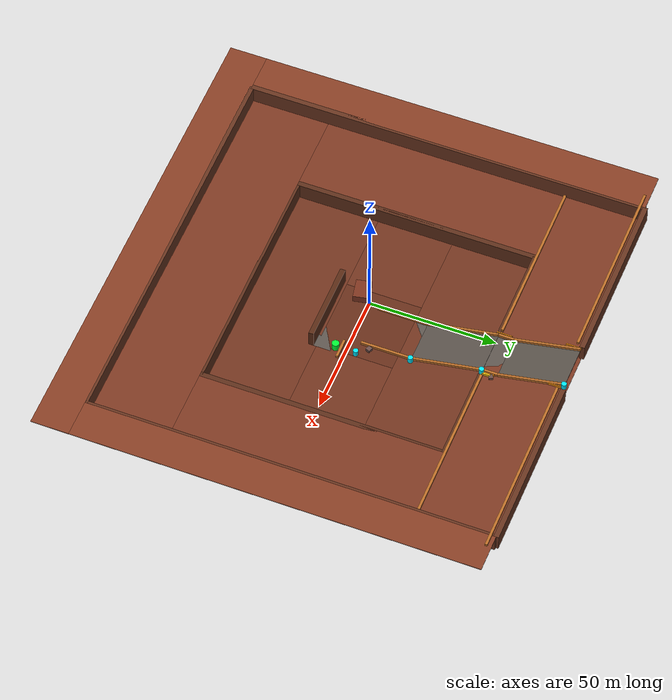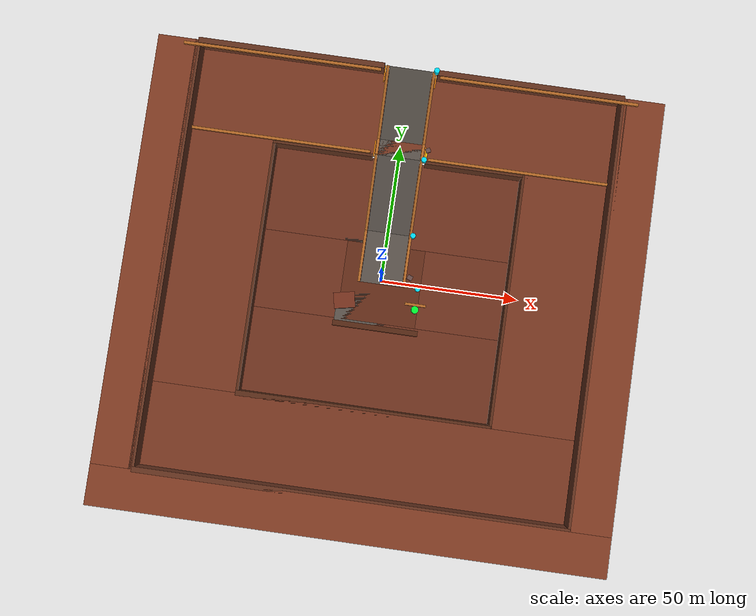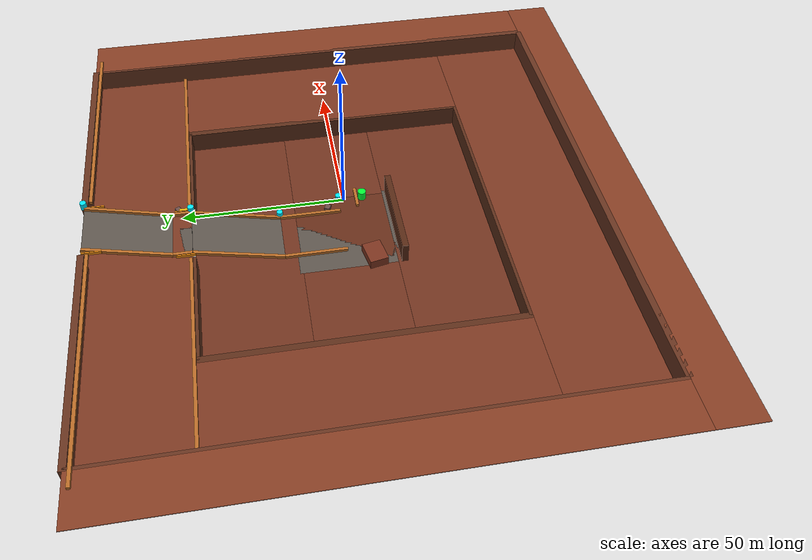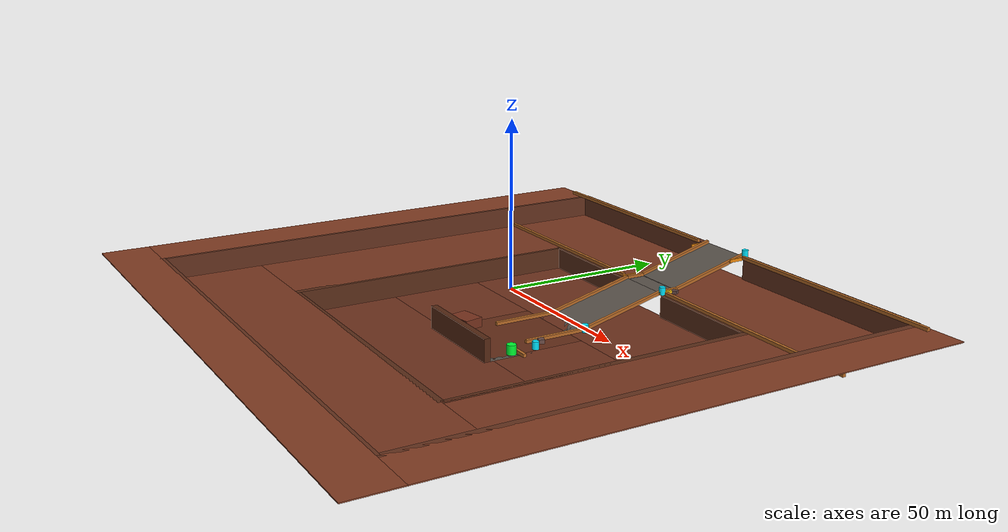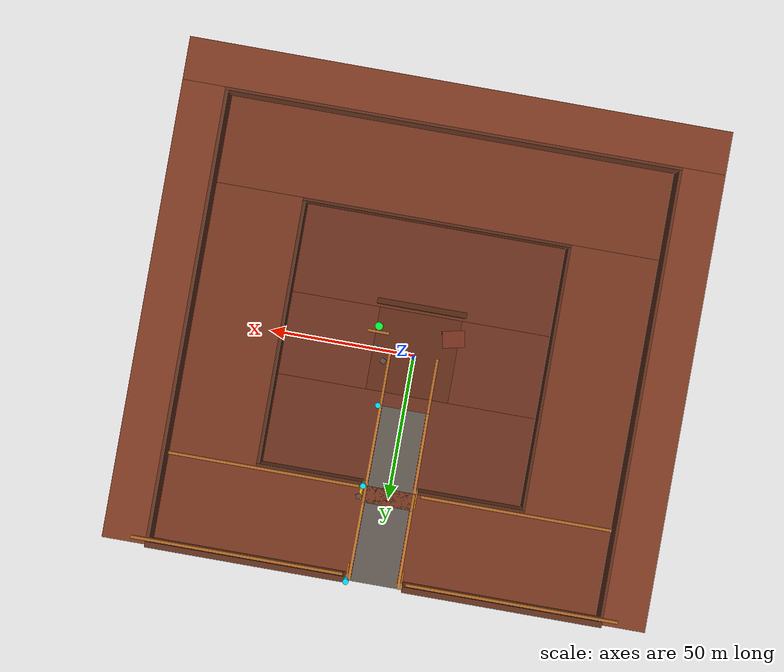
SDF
<sdf version="1.9">
 <world name="sih_mine_world">
  <model name="Bench1_South">
   <static>true</static>
   <pose>0 -87.5 -0.15 0 0 0</pose>
   <link name="link">
    <collision name="collision">
     <geometry><box><size>190.0 15.0 0.3</size></box></geometry>
     <surface><friction><ode><mu>0.9</mu><mu2>0.9</mu2></ode></friction></surface>
    </collision>
    <visual name="visual">
     <geometry><box><size>190.0 15.0 0.3</size></box></geometry>
     <material><ambient>0.52 0.24 0.14 1</ambient><diffuse>0.52 0.24 0.14 1</diffuse></material>
    </visual>
   </link>
  </model>
  <model name="Bench1_East">
   <static>true</static>
   <pose>87.5 0 -0.15 0 0 0</pose>
   <link name="link">
    <collision name="collision">
     <geometry><box><size>15.0 160.0 0.3</size></box></geometry>
     <surface><friction><ode><mu>0.9</mu><mu2>0.9</mu2></ode></friction></surface>
    </collision>
    <visual name="visual">
     <geometry><box><size>15.0 160.0 0.3</size></box></geometry>
     <material><ambient>0.52 0.24 0.14 1</ambient><diffuse>0.52 0.24 0.14 1</diffuse></material>
    </visual>
   </link>
  </model>
  <model name="Bench1_West">
   <static>true</static>
   <pose>-87.5 0 -0.15 0 0 0</pose>
   <link name="link">
    <collision name="collision">
     <geometry><box><size>15.0 160.0 0.3</size></box></geometry>
     <surface><friction><ode><mu>0.9</mu><mu2>0.9</mu2></ode></friction></surface>
    </collision>
    <visual name="visual">
     <geometry><box><size>15.0 160.0 0.3</size></box></geometry>
     <material><ambient>0.52 0.24 0.14 1</ambient><diffuse>0.52 0.24 0.14 1</diffuse></material>
    </visual>
   </link>
  </model>
  <model name="Bench2_North">
   <static>true</static>
   <pose>0 64.0 -7.15 0 0 0</pose>
   <link name="link">
    <collision name="collision">
     <geometry><box><size>160.0 32.0 0.3</size></box></geometry>
     <surface><friction><ode><mu>0.9</mu><mu2>0.9</mu2></ode></friction></surface>
    </collision>
    <visual name="visual">
     <geometry><box><size>160.0 32.0 0.3</size></box></geometry>
     <material><ambient>0.48 0.22 0.13 1</ambient><diffuse>0.48 0.22 0.13 1</diffuse></material>
    </visual>
   </link>
  </model>
  <model name="Bench2_South">
   <static>true</static>
   <pose>0 -64.0 -7.15 0 0 0</pose>
   <link name="link">
    <collision name="collision">
     <geometry><box><size>160.0 32.0 0.3</size></box></geometry>
     <surface><friction><ode><mu>0.9</mu><mu2>0.9</mu2></ode></friction></surface>
    </collision>
    <visual name="visual">
     <geometry><box><size>160.0 32.0 0.3</size></box></geometry>
     <material><ambient>0.48 0.22 0.13 1</ambient><diffuse>0.48 0.22 0.13 1</diffuse></material>
    </visual>
   </link>
  </model>
  <model name="Bench2_East">
   <static>true</static>
   <pose>64.0 0 -7.15 0 0 0</pose>
   <link name="link">
    <collision name="collision">
     <geometry><box><size>32.0 96.0 0.3</size></box></geometry>
     <surface><friction><ode><mu>0.9</mu><mu2>0.9</mu2></ode></friction></surface>
    </collision>
    <visual name="visual">
     <geometry><box><size>32.0 96.0 0.3</size></box></geometry>
     <material><ambient>0.48 0.22 0.13 1</ambient><diffuse>0.48 0.22 0.13 1</diffuse></material>
    </visual>
   </link>
  </model>
  <model name="Bench2_West">
   <static>true</static>
   <pose>-64.0 0 -7.15 0 0 0</pose>
   <link name="link">
    <collision name="collision">
     <geometry><box><size>32.0 96.0 0.3</size></box></geometry>
     <surface><friction><ode><mu>0.9</mu><mu2>0.9</mu2></ode></friction></surface>
    </collision>
    <visual name="visual">
     <geometry><box><size>32.0 96.0 0.3</size></box></geometry>
     <material><ambient>0.48 0.22 0.13 1</ambient><diffuse>0.48 0.22 0.13 1</diffuse></material>
    </visual>
   </link>
  </model>
  <model name="Bench3_North">
   <static>true</static>
   <pose>0 31.5 -14.15 0 0 0</pose>
   <link name="link">
    <collision name="collision">
     <geometry><box><size>96.0 33.0 0.3</size></box></geometry>
     <surface><friction><ode><mu>0.9</mu><mu2>0.9</mu2></ode></friction></surface>
    </collision>
    <visual name="visual">
     <geometry><box><size>96.0 33.0 0.3</size></box></geometry>
     <material><ambient>0.44 0.20 0.12 1</ambient><diffuse>0.44 0.20 0.12 1</diffuse></material>
    </visual>
   </link>
  </model>
  <model name="Bench3_South">
   <static>true</static>
   <pose>0 -31.5 -14.15 0 0 0</pose>
   <link name="link">
    <collision name="collision">
     <geometry><box><size>96.0 33.0 0.3</size></box></geometry>
     <surface><friction><ode><mu>0.9</mu><mu2>0.9</mu2></ode></friction></surface>
    </collision>
    <visual name="visual">
     <geometry><box><size>96.0 33.0 0.3</size></box></geometry>
     <material><ambient>0.44 0.20 0.12 1</ambient><diffuse>0.44 0.20 0.12 1</diffuse></material>
    </visual>
   </link>
  </model>
  <model name="Bench3_East">
   <static>true</static>
   <pose>31.5 0 -14.15 0 0 0</pose>
   <link name="link">
    <collision name="collision">
     <geometry><box><size>33.0 30.0 0.3</size></box></geometry>
     <surface><friction><ode><mu>0.9</mu><mu2>0.9</mu2></ode></friction></surface>
    </collision>
    <visual name="visual">
     <geometry><box><size>33.0 30.0 0.3</size></box></geometry>
     <material><ambient>0.44 0.20 0.12 1</ambient><diffuse>0.44 0.20 0.12 1</diffuse></material>
    </visual>
   </link>
  </model>
  <model name="Bench3_West">
   <static>true</static>
   <pose>-31.5 0 -14.15 0 0 0</pose>
   <link name="link">
    <collision name="collision">
     <geometry><box><size>33.0 30.0 0.3</size></box></geometry>
     <surface><friction><ode><mu>0.9</mu><mu2>0.9</mu2></ode></friction></surface>
    </collision>
    <visual name="visual">
     <geometry><box><size>33.0 30.0 0.3</size></box></geometry>
     <material><ambient>0.44 0.20 0.12 1</ambient><diffuse>0.44 0.20 0.12 1</diffuse></material>
    </visual>
   </link>
  </model>
  <model name="Mine_Floor">
   <static>true</static>
   <pose>0 0 -14.15 0 0 0</pose>
   <link name="link">
    <collision name="collision">
     <geometry><box><size>30.0 30.0 0.3</size></box></geometry>
     <surface><friction><ode><mu>0.9</mu><mu2>0.9</mu2></ode></friction></surface>
    </collision>
    <visual name="visual">
     <geometry><box><size>30.0 30.0 0.3</size></box></geometry>
     <material><ambient>0.40 0.18 0.10 1</ambient><diffuse>0.40 0.18 0.10 1</diffuse></material>
    </visual>
   </link>
  </model>
  <model name="Wall1_North_West">
   <static>true</static>
   <pose>-45.0 80.0 -3.5 0 0 0</pose>
   <link name="link">
    <collision name="collision"><geometry><box><size>70.0 2.0 7.0</size></box></geometry></collision>
    <visual name="visual">
     <geometry><box><size>70.0 2.0 7.0</size></box></geometry>
     <material><ambient>0.40 0.20 0.12 1</ambient><diffuse>0.40 0.20 0.12 1</diffuse></material>
    </visual>
   </link>
  </model>
  <model name="Wall1_North_East">
   <static>true</static>
   <pose>45.0 80.0 -3.5 0 0 0</pose>
   <link name="link">
    <collision name="collision"><geometry><box><size>70.0 2.0 7.0</size></box></geometry></collision>
    <visual name="visual">
     <geometry><box><size>70.0 2.0 7.0</size></box></geometry>
     <material><ambient>0.40 0.20 0.12 1</ambient><diffuse>0.40 0.20 0.12 1</diffuse></material>
    </visual>
   </link>
  </model>
  <model name="Wall1_South">
   <static>true</static>
   <pose>0 -80.0 -3.5 0 0 0</pose>
   <link name="link">
    <collision name="collision"><geometry><box><size>160.0 2.0 7.0</size></box></geometry></collision>
    <visual name="visual">
     <geometry><box><size>160.0 2.0 7.0</size></box></geometry>
     <material><ambient>0.40 0.20 0.12 1</ambient><diffuse>0.40 0.20 0.12 1</diffuse></material>
    </visual>
   </link>
  </model>
  <model name="Wall1_East">
   <static>true</static>
   <pose>80.0 0 -3.5 0 0 0</pose>
   <link name="link">
    <collision name="collision"><geometry><box><size>2.0 160.0 7.0</size></box></geometry></collision>
    <visual name="visual">
     <geometry><box><size>2.0 160.0 7.0</size></box></geometry>
     <material><ambient>0.40 0.20 0.12 1</ambient><diffuse>0.40 0.20 0.12 1</diffuse></material>
    </visual>
   </link>
  </model>
  <model name="Wall1_West">
   <static>true</static>
   <pose>-80.0 0 -3.5 0 0 0</pose>
   <link name="link">
    <collision name="collision"><geometry><box><size>2.0 160.0 7.0</size></box></geometry></collision>
    <visual name="visual">
     <geometry><box><size>2.0 160.0 7.0</size></box></geometry>
     <material><ambient>0.40 0.20 0.12 1</ambient><diffuse>0.40 0.20 0.12 1</diffuse></material>
    </visual>
   </link>
  </model>
  <model name="Wall2_North_West">
   <static>true</static>
   <pose>-29.0 48.0 -10.5 0 0 0</pose>
   <link name="link">
    <collision name="collision"><geometry><box><size>38.0 2.0 7.0</size></box></geometry></collision>
    <visual name="visual">
     <geometry><box><size>38.0 2.0 7.0</size></box></geometry>
     <material><ambient>0.36 0.18 0.10 1</ambient><diffuse>0.36 0.18 0.10 1</diffuse></material>
    </visual>
   </link>
  </model>
  <model name="Wall2_North_East">
   <static>true</static>
   <pose>29.0 48.0 -10.5 0 0 0</pose>
   <link name="link">
    <collision name="collision"><geometry><box><size>38.0 2.0 7.0</size></box></geometry></collision>
    <visual name="visual">
     <geometry><box><size>38.0 2.0 7.0</size></box></geometry>
     <material><ambient>0.36 0.18 0.10 1</ambient><diffuse>0.36 0.18 0.10 1</diffuse></material>
    </visual>
   </link>
  </model>
  <model name="Wall2_South">
   <static>true</static>
   <pose>0 -48.0 -10.5 0 0 0</pose>
   <link name="link">
    <collision name="collision"><geometry><box><size>96.0 2.0 7.0</size></box></geometry></collision>
    <visual name="visual">
     <geometry><box><size>96.0 2.0 7.0</size></box></geometry>
     <material><ambient>0.36 0.18 0.10 1</ambient><diffuse>0.36 0.18 0.10 1</diffuse></material>
    </visual>
   </link>
  </model>
  <model name="Wall2_East">
   <static>true</static>
   <pose>48.0 0 -10.5 0 0 0</pose>
   <link name="link">
    <collision name="collision"><geometry><box><size>2.0 96.0 7.0</size></box></geometry></collision>
    <visual name="visual">
     <geometry><box><size>2.0 96.0 7.0</size></box></geometry>
     <material><ambient>0.36 0.18 0.10 1</ambient><diffuse>0.36 0.18 0.10 1</diffuse></material>
    </visual>
   </link>
  </model>
  <model name="Wall2_West">
   <static>true</static>
   <pose>-48.0 0 -10.5 0 0 0</pose>
   <link name="link">
    <collision name="collision"><geometry><box><size>2.0 96.0 7.0</size></box></geometry></collision>
    <visual name="visual">
     <geometry><box><size>2.0 96.0 7.0</size></box></geometry>
     <material><ambient>0.36 0.18 0.10 1</ambient><diffuse>0.36 0.18 0.10 1</diffuse></material>
    </visual>
   </link>
  </model>
  <model name="Ramp_01">
   <static>true</static>
   <pose>0 67.0 -3.5 -2.8785979219088738 0 0</pose>
   <link name="link">
    <collision name="collision">
     <geometry><box><size>16.0 26.92582403567252 0.3</size></box></geometry>
     <surface><friction><ode><mu>1.0</mu><mu2>0.9</mu2></ode></friction></surface>
    </collision>
    <visual name="visual">
     <geometry><box><size>16.0 26.92582403567252 0.3</size></box></geometry>
     <material><ambient>0.36 0.33 0.30 1</ambient><diffuse>0.36 0.33 0.30 1</diffuse></material>
    </visual>
   </link>
  </model>
  <model name="Road_Level2_Connector">
   <static>true</static>
   <pose>0 51.0 -7.15 0 0 0</pose>
   <link name="link">
    <collision name="collision">
     <geometry><box><size>16.0 6.0 0.3</size></box></geometry>
     <surface><friction><ode><mu>1.0</mu><mu2>0.9</mu2></ode></friction></surface>
    </collision>
    <visual name="visual">
     <geometry><box><size>16.0 6.0 0.3</size></box></geometry>
     <material><ambient>0.36 0.33 0.30 1</ambient><diffuse>0.36 0.33 0.30 1</diffuse></material>
    </visual>
   </link>
  </model>
  <model name="Ramp_02">
   <static>true</static>
   <pose>0 34.0 -10.5 -2.896613990462929 0 0</pose>
   <link name="link">
    <collision name="collision">
     <geometry><box><size>16.0 28.861739379323623 0.3</size></box></geometry>
     <surface><friction><ode><mu>1.0</mu><mu2>0.9</mu2></ode></friction></surface>
    </collision>
    <visual name="visual">
     <geometry><box><size>16.0 28.861739379323623 0.3</size></box></geometry>
     <material><ambient>0.36 0.33 0.30 1</ambient><diffuse>0.36 0.33 0.30 1</diffuse></material>
    </visual>
   </link>
  </model>
  <model name="Road_Floor_to_Loading">
   <static>true</static>
   <pose>0 10.0 -14.15 0 0 0</pose>
   <link name="link">
    <collision name="collision">
     <geometry><box><size>16.0 20.0 0.3</size></box></geometry>
     <surface><friction><ode><mu>1.0</mu><mu2>0.9</mu2></ode></friction></surface>
    </collision>
    <visual name="visual">
     <geometry><box><size>16.0 20.0 0.3</size></box></geometry>
     <material><ambient>0.36 0.33 0.30 1</ambient><diffuse>0.36 0.33 0.30 1</diffuse></material>
    </visual>
   </link>
  </model>
  <model name="Turning_Area_Loading">
   <static>true</static>
   <pose>0 0.0 -14.15 0 0 0</pose>
   <link name="link">
    <collision name="collision">
     <geometry><box><size>32 32 0.3</size></box></geometry>
     <surface><friction><ode><mu>1.0</mu><mu2>0.9</mu2></ode></friction></surface>
    </collision>
    <visual name="visual">
     <geometry><box><size>32 32 0.3</size></box></geometry>
     <material><ambient>0.36 0.33 0.30 1</ambient><diffuse>0.36 0.33 0.30 1</diffuse></material>
    </visual>
   </link>
  </model>
  <model name="Berm_Apron_South_West">
   <static>true</static>
   <pose>-48.0 78.0 0.5 0 0 0</pose>
   <link name="link">
    <collision name="collision">
     <geometry><box><size>74.0 1.0 1.0</size></box></geometry>
     <surface><friction><ode><mu>0.8</mu><mu2>0.8</mu2></ode></friction></surface>
    </collision>
    <visual name="visual">
     <geometry><box><size>74.0 1.0 1.0</size></box></geometry>
     <material><ambient>0.72 0.42 0.15 1</ambient><diffuse>0.72 0.42 0.15 1</diffuse></material>
    </visual>
   </link>
  </model>
  <model name="Berm_Apron_South_East">
   <static>true</static>
   <pose>48.0 78.0 0.5 0 0 0</pose>
   <link name="link">
    <collision name="collision">
     <geometry><box><size>74.0 1.0 1.0</size></box></geometry>
     <surface><friction><ode><mu>0.8</mu><mu2>0.8</mu2></ode></friction></surface>
    </collision>
    <visual name="visual">
     <geometry><box><size>74.0 1.0 1.0</size></box></geometry>
     <material><ambient>0.72 0.42 0.15 1</ambient><diffuse>0.72 0.42 0.15 1</diffuse></material>
    </visual>
   </link>
  </model>
  <model name="Berm_Ramp01_Left">
   <static>true</static>
   <pose>-8.6 67.0 -3.0 -2.8785979219088738 0 0</pose>
   <link name="link">
    <collision name="collision">
     <geometry><box><size>1.0 26.9 1.0</size></box></geometry>
     <surface><friction><ode><mu>0.8</mu><mu2>0.8</mu2></ode></friction></surface>
    </collision>
    <visual name="visual">
     <geometry><box><size>1.0 26.9 1.0</size></box></geometry>
     <material><ambient>0.72 0.42 0.15 1</ambient><diffuse>0.72 0.42 0.15 1</diffuse></material>
    </visual>
   </link>
  </model>
  <model name="Berm_Ramp01_Right">
   <static>true</static>
   <pose>8.6 67.0 -3.0 -2.8785979219088738 0 0</pose>
   <link name="link">
    <collision name="collision">
     <geometry><box><size>1.0 26.9 1.0</size></box></geometry>
     <surface><friction><ode><mu>0.8</mu><mu2>0.8</mu2></ode></friction></surface>
    </collision>
    <visual name="visual">
     <geometry><box><size>1.0 26.9 1.0</size></box></geometry>
     <material><ambient>0.72 0.42 0.15 1</ambient><diffuse>0.72 0.42 0.15 1</diffuse></material>
    </visual>
   </link>
  </model>
  <model name="Berm_Bench2_West">
   <static>true</static>
   <pose>-8.6 51.0 -6.5 0 0 0</pose>
   <link name="link">
    <collision name="collision">
     <geometry><box><size>1.0 6.0 1.0</size></box></geometry>
     <surface><friction><ode><mu>0.8</mu><mu2>0.8</mu2></ode></friction></surface>
    </collision>
    <visual name="visual">
     <geometry><box><size>1.0 6.0 1.0</size></box></geometry>
     <material><ambient>0.72 0.42 0.15 1</ambient><diffuse>0.72 0.42 0.15 1</diffuse></material>
    </visual>
   </link>
  </model>
  <model name="Berm_Bench2_East">
   <static>true</static>
   <pose>8.6 51.0 -6.5 0 0 0</pose>
   <link name="link">
    <collision name="collision">
     <geometry><box><size>1.0 6.0 1.0</size></box></geometry>
     <surface><friction><ode><mu>0.8</mu><mu2>0.8</mu2></ode></friction></surface>
    </collision>
    <visual name="visual">
     <geometry><box><size>1.0 6.0 1.0</size></box></geometry>
     <material><ambient>0.72 0.42 0.15 1</ambient><diffuse>0.72 0.42 0.15 1</diffuse></material>
    </visual>
   </link>
  </model>
  <model name="Berm_Bench2_Dropoff_West">
   <static>true</static>
   <pose>-48.0 48.5 -6.5 0 0 0</pose>
   <link name="link">
    <collision name="collision">
     <geometry><box><size>74.0 1.0 1.0</size></box></geometry>
     <surface><friction><ode><mu>0.8</mu><mu2>0.8</mu2></ode></friction></surface>
    </collision>
    <visual name="visual">
     <geometry><box><size>74.0 1.0 1.0</size></box></geometry>
     <material><ambient>0.72 0.42 0.15 1</ambient><diffuse>0.72 0.42 0.15 1</diffuse></material>
    </visual>
   </link>
  </model>
  <model name="Berm_Bench2_Dropoff_East">
   <static>true</static>
   <pose>48.0 48.5 -6.5 0 0 0</pose>
   <link name="link">
    <collision name="collision">
     <geometry><box><size>74.0 1.0 1.0</size></box></geometry>
     <surface><friction><ode><mu>0.8</mu><mu2>0.8</mu2></ode></friction></surface>
    </collision>
    <visual name="visual">
     <geometry><box><size>74.0 1.0 1.0</size></box></geometry>
     <material><ambient>0.72 0.42 0.15 1</ambient><diffuse>0.72 0.42 0.15 1</diffuse></material>
    </visual>
   </link>
  </model>
  <model name="Berm_Ramp02_Left">
   <static>true</static>
   <pose>-8.6 34.0 -10.0 -2.896613990462929 0 0</pose>
   <link name="link">
    <collision name="collision">
     <geometry><box><size>1.0 28.8 1.0</size></box></geometry>
     <surface><friction><ode><mu>0.8</mu><mu2>0.8</mu2></ode></friction></surface>
    </collision>
    <visual name="visual">
     <geometry><box><size>1.0 28.8 1.0</size></box></geometry>
     <material><ambient>0.72 0.42 0.15 1</ambient><diffuse>0.72 0.42 0.15 1</diffuse></material>
    </visual>
   </link>
  </model>
  <model name="Berm_Ramp02_Right">
   <static>true</static>
   <pose>8.6 34.0 -10.0 -2.896613990462929 0 0</pose>
   <link name="link">
    <collision name="collision">
     <geometry><box><size>1.0 28.8 1.0</size></box></geometry>
     <surface><friction><ode><mu>0.8</mu><mu2>0.8</mu2></ode></friction></surface>
    </collision>
    <visual name="visual">
     <geometry><box><size>1.0 28.8 1.0</size></box></geometry>
     <material><ambient>0.72 0.42 0.15 1</ambient><diffuse>0.72 0.42 0.15 1</diffuse></material>
    </visual>
   </link>
  </model>
  <model name="Berm_PitFloor_West">
   <static>true</static>
   <pose>-8.6 10.0 -13.5 0 0 0</pose>
   <link name="link">
    <collision name="collision">
     <geometry><box><size>1.0 20.0 1.0</size></box></geometry>
     <surface><friction><ode><mu>0.8</mu><mu2>0.8</mu2></ode></friction></surface>
    </collision>
    <visual name="visual">
     <geometry><box><size>1.0 20.0 1.0</size></box></geometry>
     <material><ambient>0.72 0.42 0.15 1</ambient><diffuse>0.72 0.42 0.15 1</diffuse></material>
    </visual>
   </link>
  </model>
  <model name="Berm_PitFloor_East">
   <static>true</static>
   <pose>8.6 10.0 -13.5 0 0 0</pose>
   <link name="link">
    <collision name="collision">
     <geometry><box><size>1.0 20.0 1.0</size></box></geometry>
     <surface><friction><ode><mu>0.8</mu><mu2>0.8</mu2></ode></friction></surface>
    </collision>
    <visual name="visual">
     <geometry><box><size>1.0 20.0 1.0</size></box></geometry>
     <material><ambient>0.72 0.42 0.15 1</ambient><diffuse>0.72 0.42 0.15 1</diffuse></material>
    </visual>
   </link>
  </model>
  <model name="Rock_Hazard_02">
   <static>true</static>
   <pose>10.5 52.0 -6.5 0 0 0.5</pose>
   <link name="link">
    <collision name="collision">
     <geometry><box><size>1.8 1.6 1.0</size></box></geometry>
     <surface><friction><ode><mu>0.9</mu><mu2>0.9</mu2></ode></friction></surface>
    </collision>
    <visual name="visual">
     <geometry><box><size>1.8 1.6 1.0</size></box></geometry>
     <material><ambient>0.42 0.30 0.28 1</ambient><diffuse>0.42 0.30 0.28 1</diffuse></material>
    </visual>
   </link>
  </model>
  <model name="Rock_Hazard_03">
   <static>true</static>
   <pose>10.5 4.0 -13.4 0 0 -0.4</pose>
   <link name="link">
    <collision name="collision">
     <geometry><box><size>2.0 1.8 1.2</size></box></geometry>
     <surface><friction><ode><mu>0.9</mu><mu2>0.9</mu2></ode></friction></surface>
    </collision>
    <visual name="visual">
     <geometry><box><size>2.0 1.8 1.2</size></box></geometry>
     <material><ambient>0.42 0.30 0.28 1</ambient><diffuse>0.42 0.30 0.28 1</diffuse></material>
    </visual>
   </link>
  </model>
  <model name="Safety_Barrier_Metal_02">
   <static>true</static>
   <pose>10.0 50.0 -6.5 0 0 0</pose>
   <link name="link">
    <collision name="collision">
     <geometry><box><size>0.8 3.5 1.0</size></box></geometry>
     <surface><friction><ode><mu>0.7</mu><mu2>0.7</mu2></ode></friction></surface>
    </collision>
    <visual name="visual">
     <geometry><box><size>0.8 3.5 1.0</size></box></geometry>
     <material><ambient>0.95 0.75 0.05 1</ambient><diffuse>0.95 0.75 0.05 1</diffuse></material>
    </visual>
   </link>
  </model>
  <model name="Barrier_Ramp01_Left">
   <static>true</static>
   <pose>-9.5 77.0 -0.4 0 0 1.5707963267948966</pose>
   <link name="link">
    <collision name="collision">
     <geometry><box><size>6.0 0.4 1.0</size></box></geometry>
     <surface><friction><ode><mu>0.5</mu><mu2>0.5</mu2></ode></friction></surface>
    </collision>
    <visual name="visual">
     <geometry><box><size>6.0 0.4 1.0</size></box></geometry>
     <material><ambient>0.95 0.55 0.05 1</ambient><diffuse>0.95 0.55 0.05 1</diffuse></material>
    </visual>
   </link>
  </model>
  <model name="Barrier_Ramp01_Right">
   <static>true</static>
   <pose>9.5 77.0 -0.4 0 0 1.5707963267948966</pose>
   <link name="link">
    <collision name="collision">
     <geometry><box><size>6.0 0.4 1.0</size></box></geometry>
     <surface><friction><ode><mu>0.5</mu><mu2>0.5</mu2></ode></friction></surface>
    </collision>
    <visual name="visual">
     <geometry><box><size>6.0 0.4 1.0</size></box></geometry>
     <material><ambient>0.95 0.55 0.05 1</ambient><diffuse>0.95 0.55 0.05 1</diffuse></material>
    </visual>
   </link>
  </model>
  <model name="Barrier_Ramp02_Left">
   <static>true</static>
   <pose>-9.5 50.0 -6.5 0 0 1.5707963267948966</pose>
   <link name="link">
    <collision name="collision">
     <geometry><box><size>6.0 0.4 1.0</size></box></geometry>
     <surface><friction><ode><mu>0.5</mu><mu2>0.5</mu2></ode></friction></surface>
    </collision>
    <visual name="visual">
     <geometry><box><size>6.0 0.4 1.0</size></box></geometry>
     <material><ambient>0.95 0.55 0.05 1</ambient><diffuse>0.95 0.55 0.05 1</diffuse></material>
    </visual>
   </link>
  </model>
  <model name="Barrier_Ramp02_Right">
   <static>true</static>
   <pose>9.5 50.0 -6.5 0 0 1.5707963267948966</pose>
   <link name="link">
    <collision name="collision">
     <geometry><box><size>6.0 0.4 1.0</size></box></geometry>
     <surface><friction><ode><mu>0.5</mu><mu2>0.5</mu2></ode></friction></surface>
    </collision>
    <visual name="visual">
     <geometry><box><size>6.0 0.4 1.0</size></box></geometry>
     <material><ambient>0.95 0.55 0.05 1</ambient><diffuse>0.95 0.55 0.05 1</diffuse></material>
    </visual>
   </link>
  </model>
  <model name="Loading_Zone_Extraction_Face">
   <static>true</static>
   <pose>0.0 -17.0 -10.5 0 0 0</pose>
   <link name="link">
    <collision name="collision">
     <geometry><box><size>32.0 2.0 7.0</size></box></geometry>
     <surface><friction><ode><mu>0.9</mu><mu2>0.9</mu2></ode></friction></surface>
    </collision>
    <visual name="visual">
     <geometry><box><size>32.0 2.0 7.0</size></box></geometry>
     <material><ambient>0.34 0.16 0.08 1</ambient><diffuse>0.34 0.16 0.08 1</diffuse></material>
    </visual>
   </link>
  </model>
  <model name="Loading_Zone_Stockpile">
   <static>true</static>
   <pose>-13.0 -8.0 -12.5 0 0 0.2</pose>
   <link name="link">
    <collision name="collision">
     <geometry><box><size>8.0 6.0 3.0</size></box></geometry>
     <surface><friction><ode><mu>0.9</mu><mu2>0.9</mu2></ode></friction></surface>
    </collision>
    <visual name="visual">
     <geometry><box><size>8.0 6.0 3.0</size></box></geometry>
     <material><ambient>0.48 0.20 0.12 1</ambient><diffuse>0.48 0.20 0.12 1</diffuse></material>
    </visual>
   </link>
  </model>
  <model name="Loading_Zone_Berm">
   <static>true</static>
   <pose>14.0 -6.0 -13.5 0 0 0</pose>
   <link name="link">
    <collision name="collision">
     <geometry><box><size>8.0 1.0 1.0</size></box></geometry>
     <surface><friction><ode><mu>0.8</mu><mu2>0.8</mu2></ode></friction></surface>
    </collision>
    <visual name="visual">
     <geometry><box><size>8.0 1.0 1.0</size></box></geometry>
     <material><ambient>0.72 0.42 0.15 1</ambient><diffuse>0.72 0.42 0.15 1</diffuse></material>
    </visual>
   </link>
  </model>
  <model name="Loading_Zone_Marker">
   <static>true</static>
   <pose>14.0 -8.0 -12.5 0 0 0</pose>
   <link name="link">
    <visual name="visual">
     <geometry><cylinder><radius>1.4</radius><length>3.0</length></cylinder></geometry>
     <material><ambient>0.0 1.0 0.2 1</ambient><diffuse>0.0 1.0 0.2 1</diffuse></material>
    </visual>
   </link>
  </model>
  <model name="Waypoint_02">
   <static>true</static>
   <pose>9.5 80.0 1.2 0 0 0</pose>
   <link name="link">
    <visual name="visual">
     <geometry><cylinder><radius>1.0</radius><length>2.4</length></cylinder></geometry>
     <material><ambient>0.0 0.9 1.0 1</ambient><diffuse>0.0 0.9 1.0 1</diffuse></material>
    </visual>
   </link>
  </model>
  <model name="Waypoint_03">
   <static>true</static>
   <pose>9.5 48.0 -5.8 0 0 0</pose>
   <link name="link">
    <visual name="visual">
     <geometry><cylinder><radius>1.0</radius><length>2.4</length></cylinder></geometry>
     <material><ambient>0.0 0.9 1.0 1</ambient><diffuse>0.0 0.9 1.0 1</diffuse></material>
    </visual>
   </link>
  </model>
  <model name="Waypoint_04">
   <static>true</static>
   <pose>9.5 20.0 -12.8 0 0 0</pose>
   <link name="link">
    <visual name="visual">
     <geometry><cylinder><radius>1.0</radius><length>2.4</length></cylinder></geometry>
     <material><ambient>0.0 0.9 1.0 1</ambient><diffuse>0.0 0.9 1.0 1</diffuse></material>
    </visual>
   </link>
  </model>
  <model name="Waypoint_05">
   <static>true</static>
   <pose>14.0 0.0 -12.8 0 0 0</pose>
   <link name="link">
    <visual name="visual">
     <geometry><cylinder><radius>1.0</radius><length>2.4</length></cylinder></geometry>
     <material><ambient>0.0 0.9 1.0 1</ambient><diffuse>0.0 0.9 1.0 1</diffuse></material>
    </visual>
   </link>
  </model>
 </world>
</sdf>
